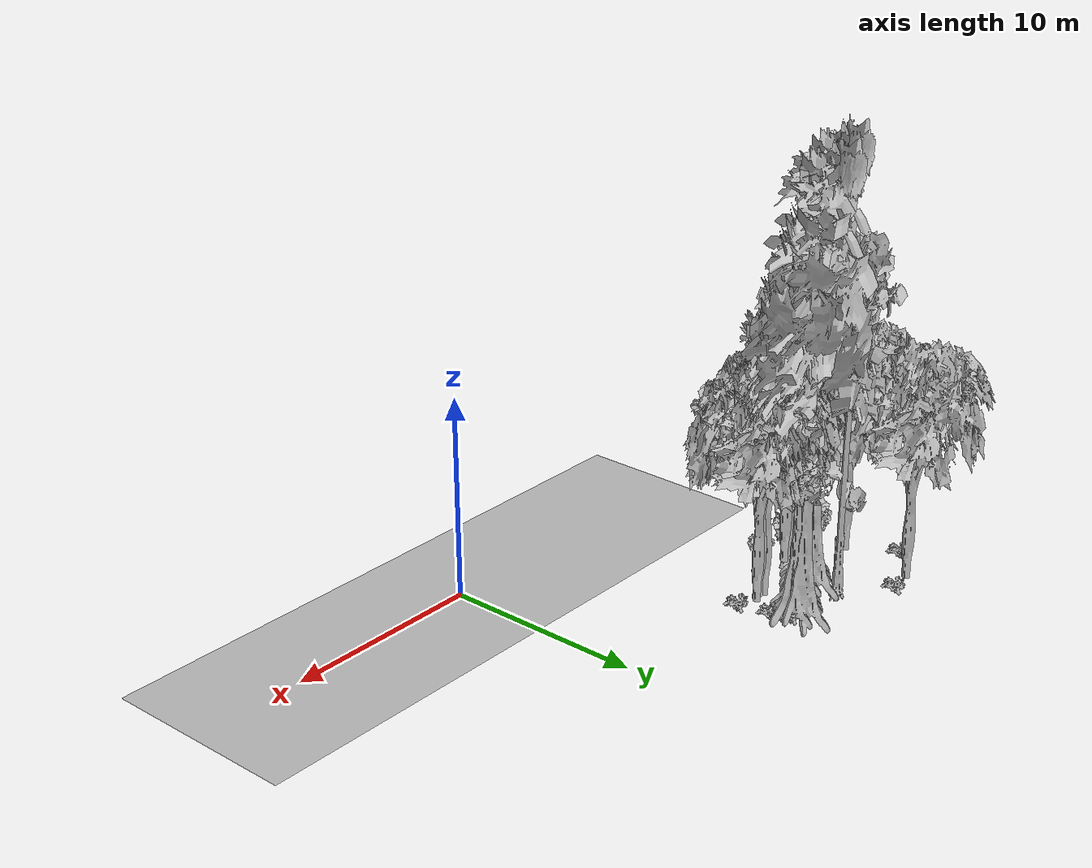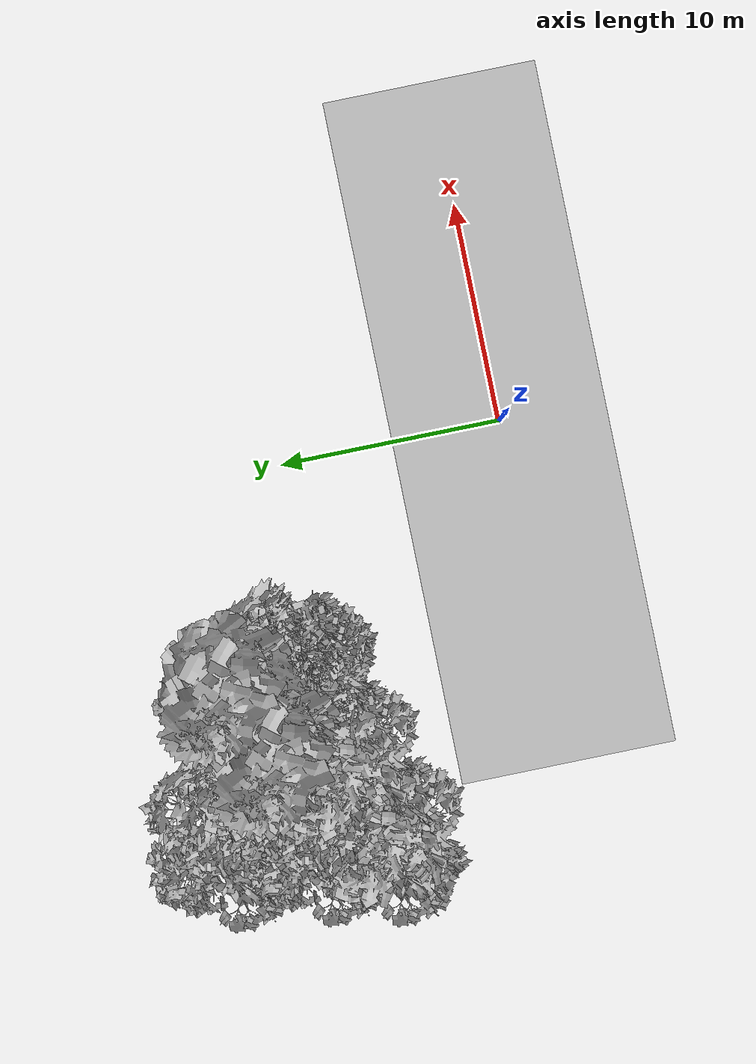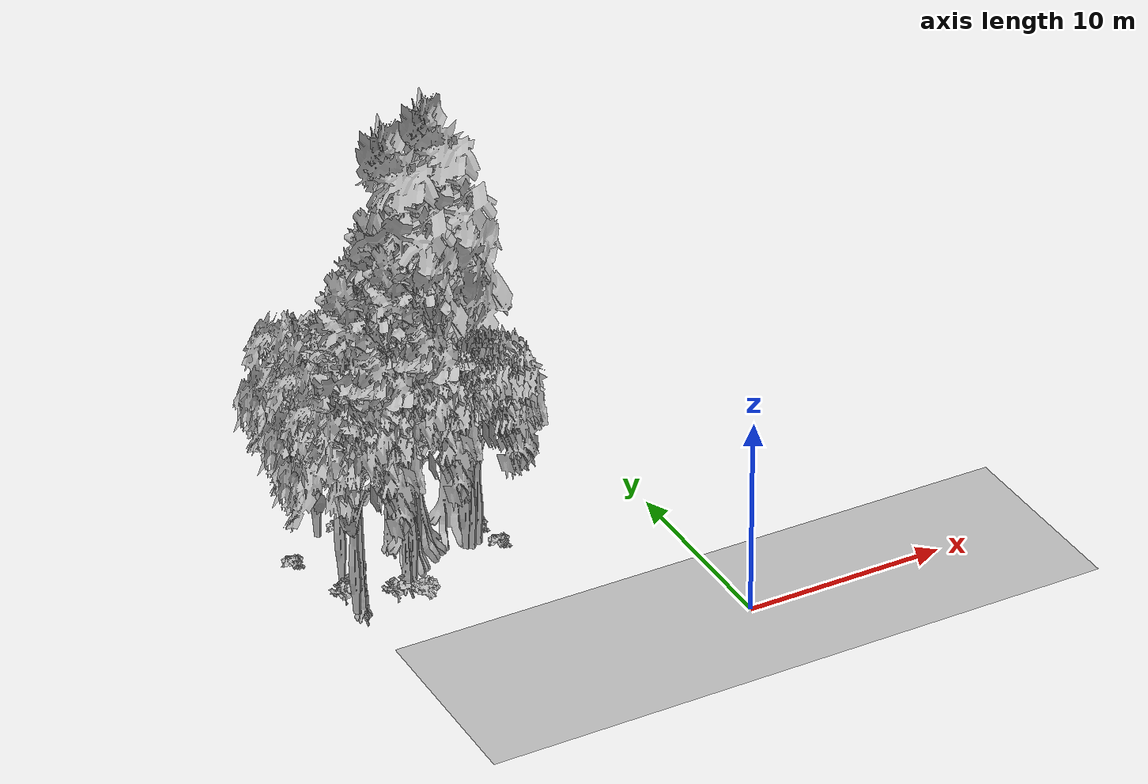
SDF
<sdf version="1.7">
 <world name="default">
  <model name="ground_plane">
   <static>1</static>
   <link name="link">
    <collision name="collision">
     <geometry><plane><normal>0 0 1</normal><size>100 100</size></plane></geometry>
     <surface><contact><ode><min_depth>0.01</min_depth><max_vel>0</max_vel></ode></contact></surface>
    </collision>
    <visual name="grass">
     <cast_shadows>0</cast_shadows>
     <geometry>
      <mesh>
       <scale>0.5814285714285714 0.18142857142857144 0.1</scale>
       <uri>file://grass_plane/meshes/grass_plane.dae</uri>
      </mesh>
     </geometry>
    </visual>
   </link>
  </model>
  <model name="Tree 47">
   <static>1</static>
   <pose>-16.009807557771893 8.387692748630354 0 1.57079 -0 0</pose>
   <link name="link">
    <collision name="collision">
     <geometry><mesh><scale>3.5 5 3.5</scale><uri>model://tree_2/meshes/tree_2.obj</uri></mesh></geometry>
    </collision>
    <visual name="visual">
     <geometry><mesh><scale>3.5 5 3.5</scale><uri>model://tree_2/meshes/tree_2.obj</uri></mesh></geometry>
    </visual>
   </link>
  </model>
  <model name="Tree 69">
   <static>1</static>
   <pose>-8.586704859382799 10.787197240010489 0 1.57079 -0 0</pose>
   <link name="link">
    <collision name="collision">
     <geometry><mesh><scale>3.5 5 3.5</scale><uri>model://tree_2/meshes/tree_2.obj</uri></mesh></geometry>
    </collision>
    <visual name="visual">
     <geometry><mesh><scale>3.5 5 3.5</scale><uri>model://tree_2/meshes/tree_2.obj</uri></mesh></geometry>
    </visual>
   </link>
  </model>
  <model name="Tree 100">
   <static>1</static>
   <pose>-12.543531435767846 9.569703939576097 0 1.57079 -0 0</pose>
   <link name="link">
    <collision name="collision">
     <geometry><mesh><scale>3.5 5 3.5</scale><uri>model://tree_2/meshes/tree_2.obj</uri></mesh></geometry>
    </collision>
    <visual name="visual">
     <geometry><mesh><scale>3.5 5 3.5</scale><uri>model://tree_2/meshes/tree_2.obj</uri></mesh></geometry>
    </visual>
   </link>
  </model>
  <model name="Tree 107">
   <static>1</static>
   <pose>-11.483817034862483 11.628223447808466 0 1.57079 -0 0</pose>
   <link name="link">
    <collision name="collision">
     <geometry><mesh><scale>3.5 5 3.5</scale><uri>model://tree_4/meshes/tree_4.obj</uri></mesh></geometry>
    </collision>
    <visual name="visual">
     <geometry><mesh><scale>3.5 5 3.5</scale><uri>model://tree_4/meshes/tree_4.obj</uri></mesh></geometry>
    </visual>
   </link>
  </model>
  <model name="Tree 128">
   <static>1</static>
   <pose>-9.005063231578909 10.602864520336688 0 1.57079 -0 0</pose>
   <link name="link">
    <collision name="collision">
     <geometry><mesh><scale>3.5 5 3.5</scale><uri>model://tree_2/meshes/tree_2.obj</uri></mesh></geometry>
    </collision>
    <visual name="visual">
     <geometry><mesh><scale>3.5 5 3.5</scale><uri>model://tree_2/meshes/tree_2.obj</uri></mesh></geometry>
    </visual>
   </link>
  </model>
  <model name="Tree 190">
   <static>1</static>
   <pose>-12.74420946296108 9.609711413754106 0 1.57079 -0 0</pose>
   <link name="link">
    <collision name="collision">
     <geometry><mesh><scale>3.5 5 3.5</scale><uri>model://tree_9/meshes/tree_9.obj</uri></mesh></geometry>
    </collision>
    <visual name="visual">
     <geometry><mesh><scale>3.5 5 3.5</scale><uri>model://tree_9/meshes/tree_9.obj</uri></mesh></geometry>
    </visual>
   </link>
  </model>
  <model name="Tree 221">
   <static>1</static>
   <pose>-15.526971617084982 8.586120746975123 0 1.57079 -0 0</pose>
   <link name="link">
    <collision name="collision">
     <geometry><mesh><scale>3.5 5 3.5</scale><uri>model://tree_9/meshes/tree_9.obj</uri></mesh></geometry>
    </collision>
    <visual name="visual">
     <geometry><mesh><scale>3.5 5 3.5</scale><uri>model://tree_9/meshes/tree_9.obj</uri></mesh></geometry>
    </visual>
   </link>
  </model>
  <model name="Tree 299">
   <static>1</static>
   <pose>-9.246809945053236 10.733694426782918 0 1.57079 -0 0</pose>
   <link name="link">
    <collision name="collision">
     <geometry><mesh><scale>3.5 5 3.5</scale><uri>model://tree_2/meshes/tree_2.obj</uri></mesh></geometry>
    </collision>
    <visual name="visual">
     <geometry><mesh><scale>3.5 5 3.5</scale><uri>model://tree_2/meshes/tree_2.obj</uri></mesh></geometry>
    </visual>
   </link>
  </model>
  <model name="Tree 373">
   <static>1</static>
   <pose>-14.913438411563462 14.929318842374418 0 1.57079 -0 0</pose>
   <link name="link">
    <collision name="collision">
     <geometry><mesh><scale>3.5 5 3.5</scale><uri>model://tree_2/meshes/tree_2.obj</uri></mesh></geometry>
    </collision>
    <visual name="visual">
     <geometry><mesh><scale>3.5 5 3.5</scale><uri>model://tree_2/meshes/tree_2.obj</uri></mesh></geometry>
    </visual>
   </link>
  </model>
  <model name="Tree 389">
   <static>1</static>
   <pose>-8.77168286539812 12.963946610704046 0 1.57079 -0 0</pose>
   <link name="link">
    <collision name="collision">
     <geometry><mesh><scale>3.5 5 3.5</scale><uri>model://tree_4/meshes/tree_4.obj</uri></mesh></geometry>
    </collision>
    <visual name="visual">
     <geometry><mesh><scale>3.5 5 3.5</scale><uri>model://tree_4/meshes/tree_4.obj</uri></mesh></geometry>
    </visual>
   </link>
  </model>
  <model name="Tree 414">
   <static>1</static>
   <pose>-12.060243650671516 12.916859115492336 0 1.57079 -0 0</pose>
   <link name="link">
    <collision name="collision">
     <geometry><mesh><scale>3.5 5 3.5</scale><uri>model://tree_9/meshes/tree_9.obj</uri></mesh></geometry>
    </collision>
    <visual name="visual">
     <geometry><mesh><scale>3.5 5 3.5</scale><uri>model://tree_9/meshes/tree_9.obj</uri></mesh></geometry>
    </visual>
   </link>
  </model>
  <model name="Tree 442">
   <static>1</static>
   <pose>-15.439262602362618 11.150158125817907 0 1.57079 -0 0</pose>
   <link name="link">
    <collision name="collision">
     <geometry><mesh><scale>3.5 5 3.5</scale><uri>model://tree_2/meshes/tree_2.obj</uri></mesh></geometry>
    </collision>
    <visual name="visual">
     <geometry><mesh><scale>3.5 5 3.5</scale><uri>model://tree_2/meshes/tree_2.obj</uri></mesh></geometry>
    </visual>
   </link>
  </model>
  <model name="Bush 31">
   <static>1</static>
   <pose>-13.899938450630138 8.225168057617594 0 1.57079 -0 0</pose>
   <link name="link">
    <collision name="collision">
     <geometry><mesh><scale>2 2 2</scale><uri>model://bush_0/meshes/bush_0.obj</uri></mesh></geometry>
     <surface><contact><collide_without_contact>false</collide_without_contact></contact></surface>
    </collision>
    <visual name="visual">
     <geometry><mesh><scale>2 2 2</scale><uri>model://bush_0/meshes/bush_0.obj</uri></mesh></geometry>
    </visual>
   </link>
  </model>
  <model name="Bush 125">
   <static>1</static>
   <pose>-8.16333056789415 12.433196829787306 0 1.57079 -0 0</pose>
   <link name="link">
    <collision name="collision">
     <geometry><mesh><scale>2 2 2</scale><uri>model://bush_2/meshes/bush_2.obj</uri></mesh></geometry>
     <surface><contact><collide_without_contact>false</collide_without_contact></contact></surface>
    </collision>
    <visual name="visual">
     <geometry><mesh><scale>2 2 2</scale><uri>model://bush_2/meshes/bush_2.obj</uri></mesh></geometry>
    </visual>
   </link>
  </model>
  <model name="Bush 136">
   <static>1</static>
   <pose>-12.493711710070343 8.129446361761214 0 1.57079 -0 0</pose>
   <link name="link">
    <collision name="collision">
     <geometry><mesh><scale>2 2 2</scale><uri>model://bush_3/meshes/bush_3.obj</uri></mesh></geometry>
     <surface><contact><collide_without_contact>false</collide_without_contact></contact></surface>
    </collision>
    <visual name="visual">
     <geometry><mesh><scale>2 2 2</scale><uri>model://bush_3/meshes/bush_3.obj</uri></mesh></geometry>
    </visual>
   </link>
  </model>
  <model name="Bush 157">
   <static>1</static>
   <pose>-7.665087906784713 10.292350545006801 0 1.57079 -0 0</pose>
   <link name="link">
    <collision name="collision">
     <geometry><mesh><scale>2 2 2</scale><uri>model://bush_2/meshes/bush_2.obj</uri></mesh></geometry>
     <surface><contact><collide_without_contact>false</collide_without_contact></contact></surface>
    </collision>
    <visual name="visual">
     <geometry><mesh><scale>2 2 2</scale><uri>model://bush_2/meshes/bush_2.obj</uri></mesh></geometry>
    </visual>
   </link>
  </model>
  <model name="Bush 169">
   <static>1</static>
   <pose>-16.864650375773135 13.30316677053932 0 1.57079 -0 0</pose>
   <link name="link">
    <collision name="collision">
     <geometry><mesh><scale>2 2 2</scale><uri>model://bush_2/meshes/bush_2.obj</uri></mesh></geometry>
     <surface><contact><collide_without_contact>false</collide_without_contact></contact></surface>
    </collision>
    <visual name="visual">
     <geometry><mesh><scale>2 2 2</scale><uri>model://bush_2/meshes/bush_2.obj</uri></mesh></geometry>
    </visual>
   </link>
  </model>
  <model name="Bush 189">
   <static>1</static>
   <pose>-16.110574799739943 9.157167257780845 0 1.57079 -0 0</pose>
   <link name="link">
    <collision name="collision">
     <geometry><mesh><scale>2 2 2</scale><uri>model://bush_0/meshes/bush_0.obj</uri></mesh></geometry>
     <surface><contact><collide_without_contact>false</collide_without_contact></contact></surface>
    </collision>
    <visual name="visual">
     <geometry><mesh><scale>2 2 2</scale><uri>model://bush_0/meshes/bush_0.obj</uri></mesh></geometry>
    </visual>
   </link>
  </model>
  <model name="Bush 206">
   <static>1</static>
   <pose>-15.599078086544118 9.451551857139755 0 1.57079 -0 0</pose>
   <link name="link">
    <collision name="collision">
     <geometry><mesh><scale>2 2 2</scale><uri>model://bush_0/meshes/bush_0.obj</uri></mesh></geometry>
     <surface><contact><collide_without_contact>false</collide_without_contact></contact></surface>
    </collision>
    <visual name="visual">
     <geometry><mesh><scale>2 2 2</scale><uri>model://bush_0/meshes/bush_0.obj</uri></mesh></geometry>
    </visual>
   </link>
  </model>
  <model name="Bush 227">
   <static>1</static>
   <pose>-13.787378035968246 14.954772759204985 0 1.57079 -0 0</pose>
   <link name="link">
    <collision name="collision">
     <geometry><mesh><scale>2 2 2</scale><uri>model://bush_2/meshes/bush_2.obj</uri></mesh></geometry>
     <surface><contact><collide_without_contact>false</collide_without_contact></contact></surface>
    </collision>
    <visual name="visual">
     <geometry><mesh><scale>2 2 2</scale><uri>model://bush_2/meshes/bush_2.obj</uri></mesh></geometry>
    </visual>
   </link>
  </model>
  <model name="Bush 279">
   <static>1</static>
   <pose>-8.34396206928401 12.80897364807571 0 1.57079 -0 0</pose>
   <link name="link">
    <collision name="collision">
     <geometry><mesh><scale>2 2 2</scale><uri>model://bush_2/meshes/bush_2.obj</uri></mesh></geometry>
     <surface><contact><collide_without_contact>false</collide_without_contact></contact></surface>
    </collision>
    <visual name="visual">
     <geometry><mesh><scale>2 2 2</scale><uri>model://bush_2/meshes/bush_2.obj</uri></mesh></geometry>
    </visual>
   </link>
  </model>
  <model name="Bush 283">
   <static>1</static>
   <pose>-7.999984272582651 11.916982944375928 0 1.57079 -0 0</pose>
   <link name="link">
    <collision name="collision">
     <geometry><mesh><scale>2 2 2</scale><uri>model://bush_2/meshes/bush_2.obj</uri></mesh></geometry>
     <surface><contact><collide_without_contact>false</collide_without_contact></contact></surface>
    </collision>
    <visual name="visual">
     <geometry><mesh><scale>2 2 2</scale><uri>model://bush_2/meshes/bush_2.obj</uri></mesh></geometry>
    </visual>
   </link>
  </model>
 </world>
</sdf>
